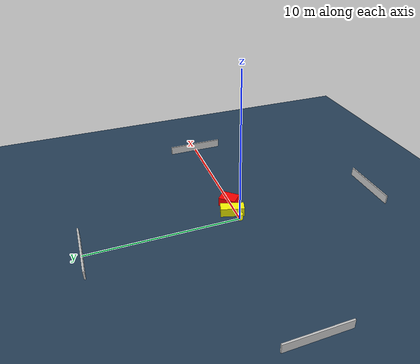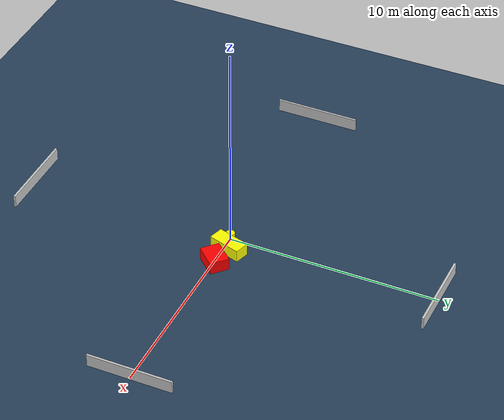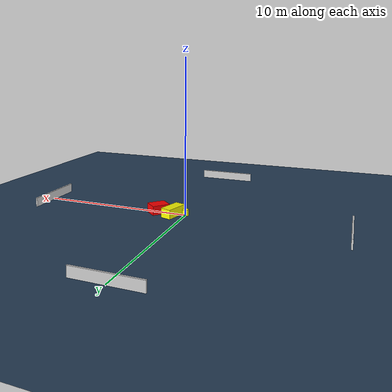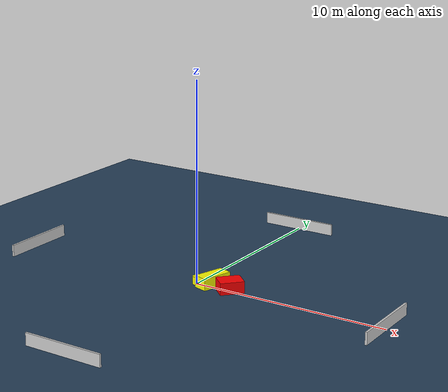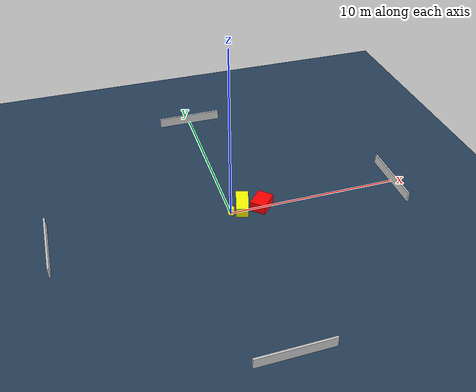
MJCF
<?xml version="1.0" ?>
<mujoco model="generated_environment">
  <option timestep="0.01" integrator="RK4" cone="elliptic"/>
  <default>
    <geom density="1"/>
  </default>
  <asset>
    <texture builtin="gradient" height="3072" name="skybox" rgb1="0.3 0.5 0.7" rgb2="0 0 0" type="skybox" width="512"/>
    <texture builtin="checker" height="300" name="groundplane" rgb1="0.2 0.3 0.4" rgb2="0.1 0.2 0.3" type="2d" width="300"/>
    <material name="groundplane" reflectance="0.2" texrepeat="5 5" texture="groundplane"/>
  </asset>
  <worldbody>
    <light dir="0 0 -1" directional="true" pos="0 0 1.5"/>
    <geom condim="3" friction="0.5 0.005 0.001" material="groundplane" name="floor" pos="0 0 0" size="0 0 0.05" type="plane"/>
    <body name="walls">
      <geom name="wall_1" condim="4" pos="-10.0 0.0 0.3" rgba="0.800000011920929 0.800000011920929 0.800000011920929 1.0" size="0.05 2.0 0.3" type="box"/>
      <geom name="wall_2" condim="4" pos="10.0 0.0 0.3" rgba="0.800000011920929 0.800000011920929 0.800000011920929 1.0" size="0.05 2.0 0.3" type="box"/>
      <geom name="wall_3" condim="4" pos="0.0 -10.0 0.3" rgba="0.800000011920929 0.800000011920929 0.800000011920929 1.0" size="2.0 0.05 0.3" type="box"/>
      <geom name="wall_4" condim="4" pos="0.0 10.0 0.3" rgba="0.800000011920929 0.800000011920929 0.800000011920929 1.0" size="2.0 0.05 0.3" type="box"/>
    </body>
    <body name="robot">
      <joint name="joint_x" type="slide" pos="0 0 0" axis="1 0 0"/>
      <joint name="joint_y" type="slide" pos="0 0 0" axis="0 1 0"/>
      <geom name="robot" type="cylinder" pos="0.0 0.0 0.2" size="0.2 0.2 0.0" mass="5.0" friction="1.0 0.005 0.0001" condim="4" rgba="1.0 1.0 0.0 1.0"/>
    </body>
    <body name="obstacle_1_movable">
      <geom name="obstacle_1_movable" condim="4" pos="0.7364953526815153 0.25981849074704355 0.3" euler="0 0 163.2884741623244" friction="0.0 0.005 0.001" rgba="1.0 1.0 0.0 1.0" size="0.3538185187022952 0.7888851942547062 0.3" type="box" mass="0.1"/>
      <joint type="free"/>
    </body>
    <body name="obstacle_2_static">
      <geom name="obstacle_2_static" condim="4" pos="1.8354359059188112 0.07208661883960499 0.3" euler="0 0 317.36535801333656" friction="0.0 0.005 0.001" rgba="1.0 0.0 0.0 1.0" size="0.4571702899761495 0.5927675593503505 0.3" type="box"/>
    </body>
  </worldbody>
  <actuator>
    <motor name="actuator_x" joint="joint_x" gear="1" ctrlrange="-1 1"/>
    <motor name="actuator_y" joint="joint_y" gear="1" ctrlrange="-1 1"/>
  </actuator>
</mujoco>
